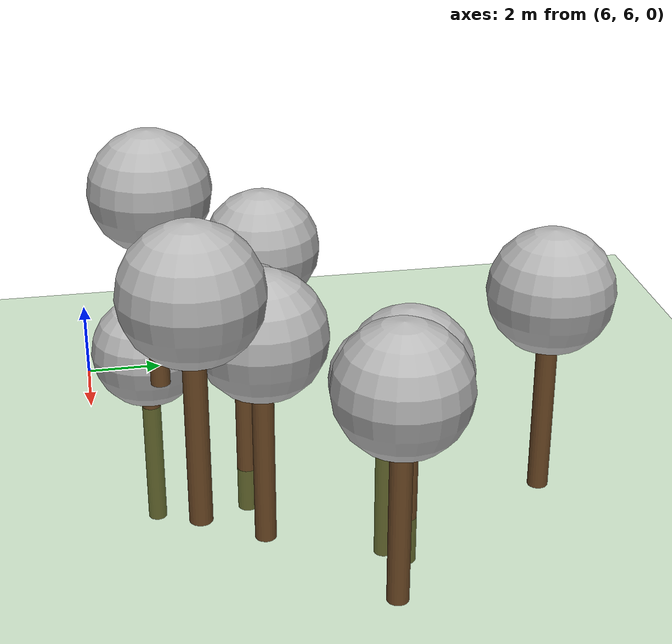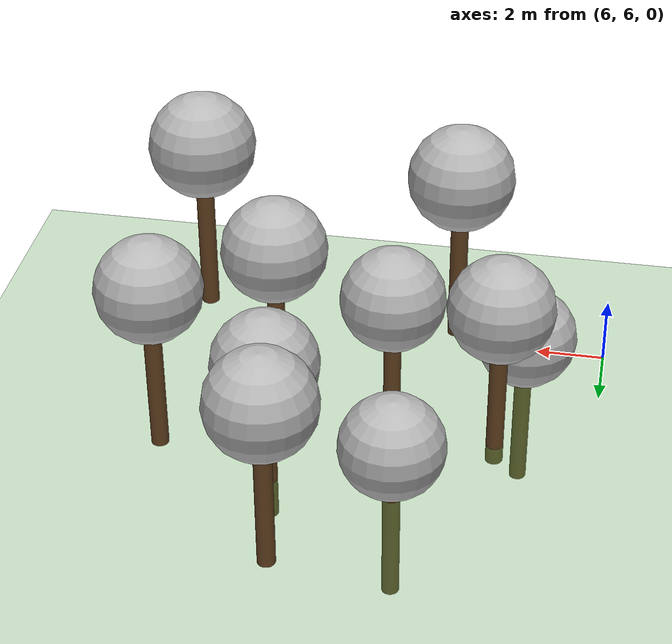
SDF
<sdf version="1.6">
 <world name="default">
  <model name="ground_plane">
   <static>1</static>
   <link name="link">
    <collision name="collision">
     <geometry><plane><normal>0 0 1</normal><size>250 250</size></plane></geometry>
     <surface><friction><ode><mu>1</mu><mu2>1</mu2></ode></friction></surface>
    </collision>
    <visual name="grass">
     <cast_shadows>0</cast_shadows>
     <geometry><plane><normal>0 0 1</normal><size>150 250</size></plane></geometry>
     <material>
      <script><uri>file://media/materials/scripts/Gazebo.material</uri><name>Gazebo/Grass</name></script>
     </material>
    </visual>
   </link>
  </model>
  <model name="tree_simple_1">
   <static>1</static>
   <link name="link">
    <pose>0 0 0.1 0 -0 0</pose>
    <inertial>
     <mass>666</mass>
     <inertia>
      <ixx>0.0861167</ixx>
      <ixy>0</ixy>
      <ixz>0</ixz>
      <iyy>0.0861167</iyy>
      <iyz>0</iyz>
      <izz>0.0861167</izz>
     </inertia>
    </inertial>
    <collision name="collision_trunk">
     <pose>0 0 2 0 -0 0</pose>
     <geometry><cylinder><radius>0.25</radius><length>4</length></cylinder></geometry>
     <surface>
      <contact>
       <poissons_ratio>0.347</poissons_ratio>
       <elastic_modulus>8.8e+09</elastic_modulus>
       <ode><kp>100000</kp><kd>100</kd><max_vel>100</max_vel><min_depth>0.001</min_depth></ode>
      </contact>
      <friction>
       <torsional>
        <coefficient>1</coefficient>
        <use_patch_radius>0</use_patch_radius>
        <surface_radius>0.01</surface_radius>
       </torsional>
      </friction>
     </surface>
    </collision>
    <collision name="collision_treetop">
     <pose>0 0 5.2 0 -0 0</pose>
     <geometry><sphere><radius>1.5</radius></sphere></geometry>
     <surface>
      <contact>
       <poissons_ratio>0.347</poissons_ratio>
       <elastic_modulus>8.8e+09</elastic_modulus>
       <ode><kp>100000</kp><kd>100</kd><max_vel>100</max_vel><min_depth>0.001</min_depth></ode>
      </contact>
      <friction>
       <torsional>
        <coefficient>1</coefficient>
        <use_patch_radius>0</use_patch_radius>
        <surface_radius>0.01</surface_radius>
       </torsional>
      </friction>
     </surface>
    </collision>
    <visual name="trunk">
     <pose>0 0 2 0 -0 0</pose>
     <geometry><cylinder><radius>0.25</radius><length>4</length></cylinder></geometry>
     <material>
      <script>
       <uri>model://tree_simple/scripts</uri>
       <uri>model://tree_simple/materials/textures</uri>
       <name>TreeSimple/Trunk</name>
      </script>
     </material>
    </visual>
    <visual name="treetop">
     <pose>0 0 5.2 0 -0 0</pose>
     <geometry><sphere><radius>1.5</radius></sphere></geometry>
     <material>
      <script>
       <uri>model://tree_simple/scripts</uri>
       <uri>model://tree_simple/materials/textures</uri>
       <name>TreeSimple/Treetop</name>
      </script>
     </material>
    </visual>
   </link>
   <pose>18.1214 12.2632 0 0 -0 0</pose>
  </model>
  <model name="tree_simple_2">
   <static>1</static>
   <link name="link">
    <pose>0 0 0.1 0 -0 0</pose>
    <inertial>
     <mass>666</mass>
     <inertia>
      <ixx>0.0861167</ixx>
      <ixy>0</ixy>
      <ixz>0</ixz>
      <iyy>0.0861167</iyy>
      <iyz>0</iyz>
      <izz>0.0861167</izz>
     </inertia>
    </inertial>
    <collision name="collision_trunk">
     <pose>0 0 2 0 -0 0</pose>
     <geometry><cylinder><radius>0.25</radius><length>4</length></cylinder></geometry>
     <surface>
      <contact>
       <poissons_ratio>0.347</poissons_ratio>
       <elastic_modulus>8.8e+09</elastic_modulus>
       <ode><kp>100000</kp><kd>100</kd><max_vel>100</max_vel><min_depth>0.001</min_depth></ode>
      </contact>
      <friction>
       <torsional>
        <coefficient>1</coefficient>
        <use_patch_radius>0</use_patch_radius>
        <surface_radius>0.01</surface_radius>
       </torsional>
      </friction>
     </surface>
    </collision>
    <collision name="collision_treetop">
     <pose>0 0 5.2 0 -0 0</pose>
     <geometry><sphere><radius>1.5</radius></sphere></geometry>
     <surface>
      <contact>
       <poissons_ratio>0.347</poissons_ratio>
       <elastic_modulus>8.8e+09</elastic_modulus>
       <ode><kp>100000</kp><kd>100</kd><max_vel>100</max_vel><min_depth>0.001</min_depth></ode>
      </contact>
      <friction>
       <torsional>
        <coefficient>1</coefficient>
        <use_patch_radius>0</use_patch_radius>
        <surface_radius>0.01</surface_radius>
       </torsional>
      </friction>
     </surface>
    </collision>
    <visual name="trunk">
     <pose>0 0 2 0 -0 0</pose>
     <geometry><cylinder><radius>0.25</radius><length>4</length></cylinder></geometry>
     <material>
      <script>
       <uri>model://tree_simple/scripts</uri>
       <uri>model://tree_simple/materials/textures</uri>
       <name>TreeSimple/Trunk</name>
      </script>
     </material>
    </visual>
    <visual name="treetop">
     <pose>0 0 5.2 0 -0 0</pose>
     <geometry><sphere><radius>1.5</radius></sphere></geometry>
     <material>
      <script>
       <uri>model://tree_simple/scripts</uri>
       <uri>model://tree_simple/materials/textures</uri>
       <name>TreeSimple/Treetop</name>
      </script>
     </material>
    </visual>
   </link>
   <pose>8.26028 7.60293 -3.64952 0 -0 0</pose>
  </model>
  <model name="tree_simple_11">
   <static>1</static>
   <link name="link">
    <pose>0 0 0.1 0 -0 0</pose>
    <inertial>
     <mass>666</mass>
     <inertia>
      <ixx>0.0861167</ixx>
      <ixy>0</ixy>
      <ixz>0</ixz>
      <iyy>0.0861167</iyy>
      <iyz>0</iyz>
      <izz>0.0861167</izz>
     </inertia>
    </inertial>
    <collision name="collision_trunk">
     <pose>0 0 2 0 -0 0</pose>
     <geometry><cylinder><radius>0.25</radius><length>4</length></cylinder></geometry>
     <surface>
      <contact>
       <poissons_ratio>0.347</poissons_ratio>
       <elastic_modulus>8.8e+09</elastic_modulus>
       <ode><kp>100000</kp><kd>100</kd><max_vel>100</max_vel><min_depth>0.001</min_depth></ode>
      </contact>
      <friction>
       <torsional>
        <coefficient>1</coefficient>
        <use_patch_radius>0</use_patch_radius>
        <surface_radius>0.01</surface_radius>
       </torsional>
      </friction>
     </surface>
    </collision>
    <collision name="collision_treetop">
     <pose>0 0 5.2 0 -0 0</pose>
     <geometry><sphere><radius>1.5</radius></sphere></geometry>
     <surface>
      <contact>
       <poissons_ratio>0.347</poissons_ratio>
       <elastic_modulus>8.8e+09</elastic_modulus>
       <ode><kp>100000</kp><kd>100</kd><max_vel>100</max_vel><min_depth>0.001</min_depth></ode>
      </contact>
      <friction>
       <torsional>
        <coefficient>1</coefficient>
        <use_patch_radius>0</use_patch_radius>
        <surface_radius>0.01</surface_radius>
       </torsional>
      </friction>
     </surface>
    </collision>
    <visual name="trunk">
     <pose>0 0 2 0 -0 0</pose>
     <geometry><cylinder><radius>0.25</radius><length>4</length></cylinder></geometry>
     <material>
      <script>
       <uri>model://tree_simple/scripts</uri>
       <uri>model://tree_simple/materials/textures</uri>
       <name>TreeSimple/Trunk</name>
      </script>
     </material>
    </visual>
    <visual name="treetop">
     <pose>0 0 5.2 0 -0 0</pose>
     <geometry><sphere><radius>1.5</radius></sphere></geometry>
     <material>
      <script>
       <uri>model://tree_simple/scripts</uri>
       <uri>model://tree_simple/materials/textures</uri>
       <name>TreeSimple/Treetop</name>
      </script>
     </material>
    </visual>
   </link>
   <pose>14.0945 16.6625 0 0 -0 0</pose>
  </model>
  <model name="tree_simple_12">
   <static>1</static>
   <link name="link">
    <pose>0 0 0.1 0 -0 0</pose>
    <inertial>
     <mass>666</mass>
     <inertia>
      <ixx>0.0861167</ixx>
      <ixy>0</ixy>
      <ixz>0</ixz>
      <iyy>0.0861167</iyy>
      <iyz>0</iyz>
      <izz>0.0861167</izz>
     </inertia>
    </inertial>
    <collision name="collision_trunk">
     <pose>0 0 2 0 -0 0</pose>
     <geometry><cylinder><radius>0.25</radius><length>4</length></cylinder></geometry>
     <surface>
      <contact>
       <poissons_ratio>0.347</poissons_ratio>
       <elastic_modulus>8.8e+09</elastic_modulus>
       <ode><kp>100000</kp><kd>100</kd><max_vel>100</max_vel><min_depth>0.001</min_depth></ode>
      </contact>
      <friction>
       <torsional>
        <coefficient>1</coefficient>
        <use_patch_radius>0</use_patch_radius>
        <surface_radius>0.01</surface_radius>
       </torsional>
      </friction>
     </surface>
    </collision>
    <collision name="collision_treetop">
     <pose>0 0 5.2 0 -0 0</pose>
     <geometry><sphere><radius>1.5</radius></sphere></geometry>
     <surface>
      <contact>
       <poissons_ratio>0.347</poissons_ratio>
       <elastic_modulus>8.8e+09</elastic_modulus>
       <ode><kp>100000</kp><kd>100</kd><max_vel>100</max_vel><min_depth>0.001</min_depth></ode>
      </contact>
      <friction>
       <torsional>
        <coefficient>1</coefficient>
        <use_patch_radius>0</use_patch_radius>
        <surface_radius>0.01</surface_radius>
       </torsional>
      </friction>
     </surface>
    </collision>
    <visual name="trunk">
     <pose>0 0 2 0 -0 0</pose>
     <geometry><cylinder><radius>0.25</radius><length>4</length></cylinder></geometry>
     <material>
      <script>
       <uri>model://tree_simple/scripts</uri>
       <uri>model://tree_simple/materials/textures</uri>
       <name>TreeSimple/Trunk</name>
      </script>
     </material>
    </visual>
    <visual name="treetop">
     <pose>0 0 5.2 0 -0 0</pose>
     <geometry><sphere><radius>1.5</radius></sphere></geometry>
     <material>
      <script>
       <uri>model://tree_simple/scripts</uri>
       <uri>model://tree_simple/materials/textures</uri>
       <name>TreeSimple/Treetop</name>
      </script>
     </material>
    </visual>
   </link>
   <pose>11.8716 9.75891 -1.275 0 -0 0</pose>
  </model>
  <model name="tree_simple_15">
   <static>1</static>
   <link name="link">
    <pose>0 0 0.1 0 -0 0</pose>
    <inertial>
     <mass>666</mass>
     <inertia>
      <ixx>0.0861167</ixx>
      <ixy>0</ixy>
      <ixz>0</ixz>
      <iyy>0.0861167</iyy>
      <iyz>0</iyz>
      <izz>0.0861167</izz>
     </inertia>
    </inertial>
    <collision name="collision_trunk">
     <pose>0 0 2 0 -0 0</pose>
     <geometry><cylinder><radius>0.25</radius><length>4</length></cylinder></geometry>
     <surface>
      <contact>
       <poissons_ratio>0.347</poissons_ratio>
       <elastic_modulus>8.8e+09</elastic_modulus>
       <ode><kp>100000</kp><kd>100</kd><max_vel>100</max_vel><min_depth>0.001</min_depth></ode>
      </contact>
      <friction>
       <torsional>
        <coefficient>1</coefficient>
        <use_patch_radius>0</use_patch_radius>
        <surface_radius>0.01</surface_radius>
       </torsional>
      </friction>
     </surface>
    </collision>
    <collision name="collision_treetop">
     <pose>0 0 5.2 0 -0 0</pose>
     <geometry><sphere><radius>1.5</radius></sphere></geometry>
     <surface>
      <contact>
       <poissons_ratio>0.347</poissons_ratio>
       <elastic_modulus>8.8e+09</elastic_modulus>
       <ode><kp>100000</kp><kd>100</kd><max_vel>100</max_vel><min_depth>0.001</min_depth></ode>
      </contact>
      <friction>
       <torsional>
        <coefficient>1</coefficient>
        <use_patch_radius>0</use_patch_radius>
        <surface_radius>0.01</surface_radius>
       </torsional>
      </friction>
     </surface>
    </collision>
    <visual name="trunk">
     <pose>0 0 2 0 -0 0</pose>
     <geometry><cylinder><radius>0.25</radius><length>4</length></cylinder></geometry>
     <material>
      <script>
       <uri>model://tree_simple/scripts</uri>
       <uri>model://tree_simple/materials/textures</uri>
       <name>TreeSimple/Trunk</name>
      </script>
     </material>
    </visual>
    <visual name="treetop">
     <pose>0 0 5.2 0 -0 0</pose>
     <geometry><sphere><radius>1.5</radius></sphere></geometry>
     <material>
      <script>
       <uri>model://tree_simple/scripts</uri>
       <uri>model://tree_simple/materials/textures</uri>
       <name>TreeSimple/Treetop</name>
      </script>
     </material>
    </visual>
   </link>
   <pose>14.7769 13.2103 -1.35046 0 -0 0</pose>
  </model>
  <model name="tree_simple_19">
   <static>1</static>
   <link name="link">
    <pose>0 0 0.1 0 -0 0</pose>
    <inertial>
     <mass>666</mass>
     <inertia>
      <ixx>0.0861167</ixx>
      <ixy>0</ixy>
      <ixz>0</ixz>
      <iyy>0.0861167</iyy>
      <iyz>0</iyz>
      <izz>0.0861167</izz>
     </inertia>
    </inertial>
    <collision name="collision_trunk">
     <pose>0 0 2 0 -0 0</pose>
     <geometry><cylinder><radius>0.25</radius><length>4</length></cylinder></geometry>
     <surface>
      <contact>
       <poissons_ratio>0.347</poissons_ratio>
       <elastic_modulus>8.8e+09</elastic_modulus>
       <ode><kp>100000</kp><kd>100</kd><max_vel>100</max_vel><min_depth>0.001</min_depth></ode>
      </contact>
      <friction>
       <torsional>
        <coefficient>1</coefficient>
        <use_patch_radius>0</use_patch_radius>
        <surface_radius>0.01</surface_radius>
       </torsional>
      </friction>
     </surface>
    </collision>
    <collision name="collision_treetop">
     <pose>0 0 5.2 0 -0 0</pose>
     <geometry><sphere><radius>1.5</radius></sphere></geometry>
     <surface>
      <contact>
       <poissons_ratio>0.347</poissons_ratio>
       <elastic_modulus>8.8e+09</elastic_modulus>
       <ode><kp>100000</kp><kd>100</kd><max_vel>100</max_vel><min_depth>0.001</min_depth></ode>
      </contact>
      <friction>
       <torsional>
        <coefficient>1</coefficient>
        <use_patch_radius>0</use_patch_radius>
        <surface_radius>0.01</surface_radius>
       </torsional>
      </friction>
     </surface>
    </collision>
    <visual name="trunk">
     <pose>0 0 2 0 -0 0</pose>
     <geometry><cylinder><radius>0.25</radius><length>4</length></cylinder></geometry>
     <material>
      <script>
       <uri>model://tree_simple/scripts</uri>
       <uri>model://tree_simple/materials/textures</uri>
       <name>TreeSimple/Trunk</name>
      </script>
     </material>
    </visual>
    <visual name="treetop">
     <pose>0 0 5.2 0 -0 0</pose>
     <geometry><sphere><radius>1.5</radius></sphere></geometry>
     <material>
      <script>
       <uri>model://tree_simple/scripts</uri>
       <uri>model://tree_simple/materials/textures</uri>
       <name>TreeSimple/Treetop</name>
      </script>
     </material>
    </visual>
   </link>
   <pose>17.5427 8.12556 2.16351 0 -0 0</pose>
  </model>
  <model name="tree_simple_22">
   <static>1</static>
   <link name="link">
    <pose>0 0 0.1 0 -0 0</pose>
    <inertial>
     <mass>666</mass>
     <inertia>
      <ixx>0.0861167</ixx>
      <ixy>0</ixy>
      <ixz>0</ixz>
      <iyy>0.0861167</iyy>
      <iyz>0</iyz>
      <izz>0.0861167</izz>
     </inertia>
    </inertial>
    <collision name="collision_trunk">
     <pose>0 0 2 0 -0 0</pose>
     <geometry><cylinder><radius>0.25</radius><length>4</length></cylinder></geometry>
     <surface>
      <contact>
       <poissons_ratio>0.347</poissons_ratio>
       <elastic_modulus>8.8e+09</elastic_modulus>
       <ode><kp>100000</kp><kd>100</kd><max_vel>100</max_vel><min_depth>0.001</min_depth></ode>
      </contact>
      <friction>
       <torsional>
        <coefficient>1</coefficient>
        <use_patch_radius>0</use_patch_radius>
        <surface_radius>0.01</surface_radius>
       </torsional>
      </friction>
     </surface>
    </collision>
    <collision name="collision_treetop">
     <pose>0 0 5.2 0 -0 0</pose>
     <geometry><sphere><radius>1.5</radius></sphere></geometry>
     <surface>
      <contact>
       <poissons_ratio>0.347</poissons_ratio>
       <elastic_modulus>8.8e+09</elastic_modulus>
       <ode><kp>100000</kp><kd>100</kd><max_vel>100</max_vel><min_depth>0.001</min_depth></ode>
      </contact>
      <friction>
       <torsional>
        <coefficient>1</coefficient>
        <use_patch_radius>0</use_patch_radius>
        <surface_radius>0.01</surface_radius>
       </torsional>
      </friction>
     </surface>
    </collision>
    <visual name="trunk">
     <pose>0 0 2 0 -0 0</pose>
     <geometry><cylinder><radius>0.25</radius><length>4</length></cylinder></geometry>
     <material>
      <script>
       <uri>model://tree_simple/scripts</uri>
       <uri>model://tree_simple/materials/textures</uri>
       <name>TreeSimple/Trunk</name>
      </script>
     </material>
    </visual>
    <visual name="treetop">
     <pose>0 0 5.2 0 -0 0</pose>
     <geometry><sphere><radius>1.5</radius></sphere></geometry>
     <material>
      <script>
       <uri>model://tree_simple/scripts</uri>
       <uri>model://tree_simple/materials/textures</uri>
       <name>TreeSimple/Treetop</name>
      </script>
     </material>
    </visual>
   </link>
   <pose>11.2943 13.4403 -3.52796 0 -0 0</pose>
  </model>
  <model name="tree_simple_26">
   <static>1</static>
   <link name="link">
    <pose>0 0 0.1 0 -0 0</pose>
    <inertial>
     <mass>666</mass>
     <inertia>
      <ixx>0.0861167</ixx>
      <ixy>0</ixy>
      <ixz>0</ixz>
      <iyy>0.0861167</iyy>
      <iyz>0</iyz>
      <izz>0.0861167</izz>
     </inertia>
    </inertial>
    <collision name="collision_trunk">
     <pose>0 0 2 0 -0 0</pose>
     <geometry><cylinder><radius>0.25</radius><length>4</length></cylinder></geometry>
     <surface>
      <contact>
       <poissons_ratio>0.347</poissons_ratio>
       <elastic_modulus>8.8e+09</elastic_modulus>
       <ode><kp>100000</kp><kd>100</kd><max_vel>100</max_vel><min_depth>0.001</min_depth></ode>
      </contact>
      <friction>
       <torsional>
        <coefficient>1</coefficient>
        <use_patch_radius>0</use_patch_radius>
        <surface_radius>0.01</surface_radius>
       </torsional>
      </friction>
     </surface>
    </collision>
    <collision name="collision_treetop">
     <pose>0 0 5.2 0 -0 0</pose>
     <geometry><sphere><radius>1.5</radius></sphere></geometry>
     <surface>
      <contact>
       <poissons_ratio>0.347</poissons_ratio>
       <elastic_modulus>8.8e+09</elastic_modulus>
       <ode><kp>100000</kp><kd>100</kd><max_vel>100</max_vel><min_depth>0.001</min_depth></ode>
      </contact>
      <friction>
       <torsional>
        <coefficient>1</coefficient>
        <use_patch_radius>0</use_patch_radius>
        <surface_radius>0.01</surface_radius>
       </torsional>
      </friction>
     </surface>
    </collision>
    <visual name="trunk">
     <pose>0 0 2 0 -0 0</pose>
     <geometry><cylinder><radius>0.25</radius><length>4</length></cylinder></geometry>
     <material>
      <script>
       <uri>model://tree_simple/scripts</uri>
       <uri>model://tree_simple/materials/textures</uri>
       <name>TreeSimple/Trunk</name>
      </script>
     </material>
    </visual>
    <visual name="treetop">
     <pose>0 0 5.2 0 -0 0</pose>
     <geometry><sphere><radius>1.5</radius></sphere></geometry>
     <material>
      <script>
       <uri>model://tree_simple/scripts</uri>
       <uri>model://tree_simple/materials/textures</uri>
       <name>TreeSimple/Treetop</name>
      </script>
     </material>
    </visual>
   </link>
   <pose>15.2056 9.77528 0 0 -0 0</pose>
  </model>
  <model name="tree_simple_28">
   <static>1</static>
   <link name="link">
    <pose>0 0 0.1 0 -0 0</pose>
    <inertial>
     <mass>666</mass>
     <inertia>
      <ixx>0.0861167</ixx>
      <ixy>0</ixy>
      <ixz>0</ixz>
      <iyy>0.0861167</iyy>
      <iyz>0</iyz>
      <izz>0.0861167</izz>
     </inertia>
    </inertial>
    <collision name="collision_trunk">
     <pose>0 0 2 0 -0 0</pose>
     <geometry><cylinder><radius>0.25</radius><length>4</length></cylinder></geometry>
     <surface>
      <contact>
       <poissons_ratio>0.347</poissons_ratio>
       <elastic_modulus>8.8e+09</elastic_modulus>
       <ode><kp>100000</kp><kd>100</kd><max_vel>100</max_vel><min_depth>0.001</min_depth></ode>
      </contact>
      <friction>
       <torsional>
        <coefficient>1</coefficient>
        <use_patch_radius>0</use_patch_radius>
        <surface_radius>0.01</surface_radius>
       </torsional>
      </friction>
     </surface>
    </collision>
    <collision name="collision_treetop">
     <pose>0 0 5.2 0 -0 0</pose>
     <geometry><sphere><radius>1.5</radius></sphere></geometry>
     <surface>
      <contact>
       <poissons_ratio>0.347</poissons_ratio>
       <elastic_modulus>8.8e+09</elastic_modulus>
       <ode><kp>100000</kp><kd>100</kd><max_vel>100</max_vel><min_depth>0.001</min_depth></ode>
      </contact>
      <friction>
       <torsional>
        <coefficient>1</coefficient>
        <use_patch_radius>0</use_patch_radius>
        <surface_radius>0.01</surface_radius>
       </torsional>
      </friction>
     </surface>
    </collision>
    <visual name="trunk">
     <pose>0 0 2 0 -0 0</pose>
     <geometry><cylinder><radius>0.25</radius><length>4</length></cylinder></geometry>
     <material>
      <script>
       <uri>model://tree_simple/scripts</uri>
       <uri>model://tree_simple/materials/textures</uri>
       <name>TreeSimple/Trunk</name>
      </script>
     </material>
    </visual>
    <visual name="treetop">
     <pose>0 0 5.2 0 -0 0</pose>
     <geometry><sphere><radius>1.5</radius></sphere></geometry>
     <material>
      <script>
       <uri>model://tree_simple/scripts</uri>
       <uri>model://tree_simple/materials/textures</uri>
       <name>TreeSimple/Treetop</name>
      </script>
     </material>
    </visual>
   </link>
   <pose>8.77056 10.6438 -0.660845 0 -0 0</pose>
  </model>
  <model name="tree_simple_25_clone">
   <static>1</static>
   <link name="link">
    <pose>0 0 0.1 0 -0 0</pose>
    <inertial>
     <mass>666</mass>
     <inertia>
      <ixx>0.0861167</ixx>
      <ixy>0</ixy>
      <ixz>0</ixz>
      <iyy>0.0861167</iyy>
      <iyz>0</iyz>
      <izz>0.0861167</izz>
     </inertia>
    </inertial>
    <collision name="collision_trunk">
     <pose>0 0 2 0 -0 0</pose>
     <geometry><cylinder><radius>0.25</radius><length>4</length></cylinder></geometry>
     <surface>
      <contact>
       <poissons_ratio>0.347</poissons_ratio>
       <elastic_modulus>8.8e+09</elastic_modulus>
       <ode><kp>100000</kp><kd>100</kd><max_vel>100</max_vel><min_depth>0.001</min_depth></ode>
      </contact>
      <friction>
       <torsional>
        <coefficient>1</coefficient>
        <use_patch_radius>0</use_patch_radius>
        <surface_radius>0.01</surface_radius>
       </torsional>
      </friction>
     </surface>
    </collision>
    <collision name="collision_treetop">
     <pose>0 0 5.2 0 -0 0</pose>
     <geometry><sphere><radius>1.5</radius></sphere></geometry>
     <surface>
      <contact>
       <poissons_ratio>0.347</poissons_ratio>
       <elastic_modulus>8.8e+09</elastic_modulus>
       <ode><kp>100000</kp><kd>100</kd><max_vel>100</max_vel><min_depth>0.001</min_depth></ode>
      </contact>
      <friction>
       <torsional>
        <coefficient>1</coefficient>
        <use_patch_radius>0</use_patch_radius>
        <surface_radius>0.01</surface_radius>
       </torsional>
      </friction>
     </surface>
    </collision>
    <visual name="trunk">
     <pose>0 0 2 0 -0 0</pose>
     <geometry><cylinder><radius>0.25</radius><length>4</length></cylinder></geometry>
     <material>
      <script>
       <uri>model://tree_simple/scripts</uri>
       <uri>model://tree_simple/materials/textures</uri>
       <name>TreeSimple/Trunk</name>
      </script>
     </material>
    </visual>
    <visual name="treetop">
     <pose>0 0 5.2 0 -0 0</pose>
     <geometry><sphere><radius>1.5</radius></sphere></geometry>
     <material>
      <script>
       <uri>model://tree_simple/scripts</uri>
       <uri>model://tree_simple/materials/textures</uri>
       <name>TreeSimple/Treetop</name>
      </script>
     </material>
    </visual>
   </link>
   <pose>10.293 7.7905 1.6282 0 -0 0</pose>
  </model>
 </world>
</sdf>
